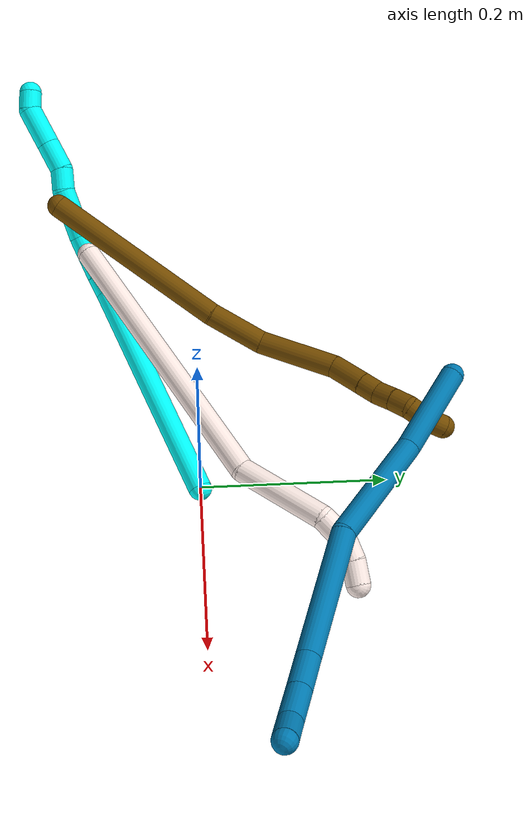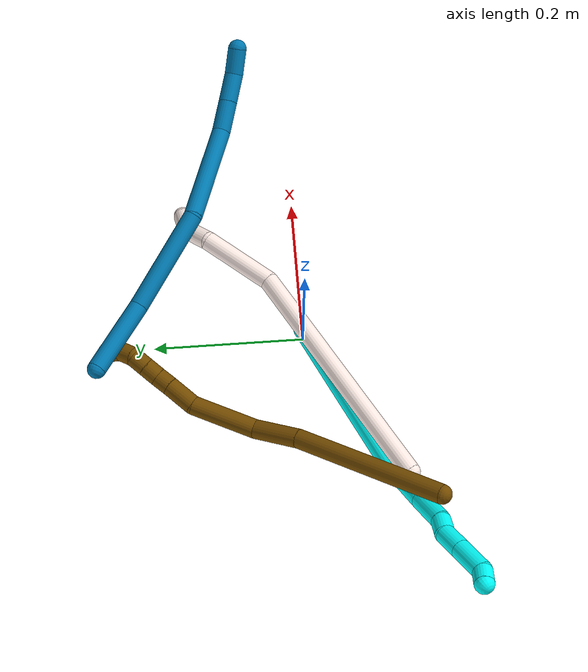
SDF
<sdf version="1.7">
 <world name="default">
  <model name="photoneo_s_sensor">
   <static>1</static>
   <pose>0 0 2 1.57079 1.57079 3.14159</pose>
   <link name="link">
    <inertial><mass>0.1</mass></inertial>
    <sensor name="sensor" type="depth">
     <update_rate>30</update_rate>
     <camera>
      <horizontal_fov>1.22</horizontal_fov>
      <image><width>1920</width><height>1200</height><format>B8G8R8</format></image>
      <clip><near>0.1</near><far>4</far></clip>
      <depth_camera><output>points</output></depth_camera>
     </camera>
     <plugin name="camera_plugin" filename="libgazebo_ros_depth_camera.so">
      <baseline>0.2</baseline>
      <alwaysOn>1</alwaysOn>
      <updateRate>0.0</updateRate>
      <cameraName>camera_ir</cameraName>
      <imageTopicName>/camera/color/image_raw</imageTopicName>
      <cameraInfoTopicName>/camera/color/camera_info</cameraInfoTopicName>
      <depthImageTopicName>/camera/depth/image_raw</depthImageTopicName>
      <depthImageCameraInfoTopicName>/camera/depth/camera_info</depthImageCameraInfoTopicName>
      <pointCloudTopicName>/camera/depth/points</pointCloudTopicName>
      <frameName>fr_optical</frameName>
      <pointCloudCutoff>0.1</pointCloudCutoff>
      <pointCloudCutoffMax>2.0</pointCloudCutoffMax>
      <distortionK1>0</distortionK1>
      <distortionK2>0</distortionK2>
      <distortionK3>0</distortionK3>
      <distortionT1>0</distortionT1>
      <distortionT2>0</distortionT2>
      <CxPrime>0</CxPrime>
      <Cx>0</Cx>
      <Cy>0</Cy>
      <focalLength>0</focalLength>
      <hackBaseline>0</hackBaseline>
     </plugin>
    </sensor>
   </link>
  </model>
  <model name="bin">
   <static>1</static>
   <link name="bottom">
    <collision name="collision-bottom">
     <pose>0 0 -0.01 0 -0 0</pose>
     <geometry><box><size>0.8 0.6 0.02</size></box></geometry>
     <surface>
      <friction><ode><mu>100</mu><mu2>100</mu2></ode></friction>
      <contact><collide_bitmask>65535</collide_bitmask></contact>
     </surface>
    </collision>
   </link>
   <link name="west_wall">
    <collision name="collision-west_wall">
     <pose>-0.41 0 0.1 0 -0 0</pose>
     <geometry><box><size>0.02 0.6 0.2</size></box></geometry>
     <surface>
      <friction><ode><mu>100</mu><mu2>100</mu2></ode></friction>
      <contact><collide_bitmask>65535</collide_bitmask></contact>
     </surface>
    </collision>
   </link>
   <link name="east_wall">
    <collision name="collision-east_wall">
     <pose>0.41 0 0.1 0 -0 0</pose>
     <geometry><box><size>0.02 0.6 0.2</size></box></geometry>
     <surface>
      <friction><ode><mu>100</mu><mu2>100</mu2></ode></friction>
      <contact><collide_bitmask>65535</collide_bitmask></contact>
     </surface>
    </collision>
   </link>
   <link name="south_wall">
    <collision name="collision-south_wall">
     <pose>0 -0.31 0.1 0 -0 0</pose>
     <geometry><box><size>0.8 0.02 0.2</size></box></geometry>
     <surface>
      <friction><ode><mu>100</mu><mu2>100</mu2></ode></friction>
      <contact><collide_bitmask>65535</collide_bitmask></contact>
     </surface>
    </collision>
   </link>
   <link name="north_wall">
    <collision name="collision-north_wall">
     <pose>0 0.31 0.1 0 -0 0</pose>
     <geometry><box><size>0.8 0.02 0.2</size></box></geometry>
     <surface>
      <friction><ode><mu>100</mu><mu2>100</mu2></ode></friction>
      <contact><collide_bitmask>65535</collide_bitmask></contact>
     </surface>
    </collision>
   </link>
  </model>
  <model name="3">
   <static>0</static>
   <link name="3">
    <collision name="collision-cylinder-e_1_1_4">
     <pose>-0.005556 -0.011084 0.125995 0.087748 -0.043903 -0.001928</pose>
     <geometry><cylinder><radius>0.0125</radius><length>0.253207</length></cylinder></geometry>
     <surface>
      <friction><ode><mu>1.16</mu><mu2>1.16</mu2><slip1>0</slip1><slip2>0</slip2></ode></friction>
      <contact><ode><kp>1e+06</kp><kd>1</kd><max_vel>0</max_vel><min_depth>0.001</min_depth></ode></contact>
     </surface>
    </collision>
    <visual name="visual-cylinder-e_1_1_4">
     <pose>-0.005556 -0.011084 0.125995 0.087748 -0.043903 -0.001928</pose>
     <geometry><cylinder><radius>0.0125</radius><length>0.253207</length></cylinder></geometry>
     <material><ambient>0.003922 1 0.996078 1</ambient></material>
    </visual>
    <collision name="collision-cylinder-e_2_4_5">
     <pose>-0.011806 -0.020021 0.262543 -0.200759 -0.064314 0.00648</pose>
     <geometry><cylinder><radius>0.0125</radius><length>0.021583</length></cylinder></geometry>
     <surface>
      <friction><ode><mu>1.16</mu><mu2>1.16</mu2><slip1>0</slip1><slip2>0</slip2></ode></friction>
      <contact><ode><kp>1e+06</kp><kd>1</kd><max_vel>0</max_vel><min_depth>0.001</min_depth></ode></contact>
     </surface>
    </collision>
    <visual name="visual-cylinder-e_2_4_5">
     <pose>-0.011806 -0.020021 0.262543 -0.200759 -0.064314 0.00648</pose>
     <geometry><cylinder><radius>0.0125</radius><length>0.021583</length></cylinder></geometry>
     <material><ambient>0.003922 1 0.996078 1</ambient></material>
    </visual>
    <collision name="collision-cylinder-e_3_5_6">
     <pose>-0.014954 -0.01352 0.29679 -0.18172 -0.101504 0.009256</pose>
     <geometry><cylinder><radius>0.0125</radius><length>0.048431</length></cylinder></geometry>
     <surface>
      <friction><ode><mu>1.16</mu><mu2>1.16</mu2><slip1>0</slip1><slip2>0</slip2></ode></friction>
      <contact><ode><kp>1e+06</kp><kd>1</kd><max_vel>0</max_vel><min_depth>0.001</min_depth></ode></contact>
     </surface>
    </collision>
    <visual name="visual-cylinder-e_3_5_6">
     <pose>-0.014954 -0.01352 0.29679 -0.18172 -0.101504 0.009256</pose>
     <geometry><cylinder><radius>0.0125</radius><length>0.048431</length></cylinder></geometry>
     <material><ambient>0.003922 1 0.996078 1</ambient></material>
    </visual>
    <collision name="collision-cylinder-e_4_6_7">
     <pose>-0.023008 -0.000357 0.346001 -0.332392 -0.204579 0.034433</pose>
     <geometry><cylinder><radius>0.0125</radius><length>0.05514</length></cylinder></geometry>
     <surface>
      <friction><ode><mu>1.16</mu><mu2>1.16</mu2><slip1>0</slip1><slip2>0</slip2></ode></friction>
      <contact><ode><kp>1e+06</kp><kd>1</kd><max_vel>0</max_vel><min_depth>0.001</min_depth></ode></contact>
     </surface>
    </collision>
    <visual name="visual-cylinder-e_4_6_7">
     <pose>-0.023008 -0.000357 0.346001 -0.332392 -0.204579 0.034433</pose>
     <geometry><cylinder><radius>0.0125</radius><length>0.05514</length></cylinder></geometry>
     <material><ambient>0.003922 1 0.996078 1</ambient></material>
    </visual>
    <collision name="collision-cylinder-e_5_7_8">
     <pose>-0.033783 0.009658 0.382567 -0.108796 -0.43562 0.024101</pose>
     <geometry><cylinder><radius>0.0125</radius><length>0.02452</length></cylinder></geometry>
     <surface>
      <friction><ode><mu>1.16</mu><mu2>1.16</mu2><slip1>0</slip1><slip2>0</slip2></ode></friction>
      <contact><ode><kp>1e+06</kp><kd>1</kd><max_vel>0</max_vel><min_depth>0.001</min_depth></ode></contact>
     </surface>
    </collision>
    <visual name="visual-cylinder-e_5_7_8">
     <pose>-0.033783 0.009658 0.382567 -0.108796 -0.43562 0.024101</pose>
     <geometry><cylinder><radius>0.0125</radius><length>0.02452</length></cylinder></geometry>
     <material><ambient>0.003922 1 0.996078 1</ambient></material>
    </visual>
    <collision name="collision-cylinder-e_6_8_9">
     <pose>-0.039788 0.01418 0.409571 -0.204854 -0.051022 0.005246</pose>
     <geometry><cylinder><radius>0.0125</radius><length>0.032632</length></cylinder></geometry>
     <surface>
      <friction><ode><mu>1.16</mu><mu2>1.16</mu2><slip1>0</slip1><slip2>0</slip2></ode></friction>
      <contact><ode><kp>1e+06</kp><kd>1</kd><max_vel>0</max_vel><min_depth>0.001</min_depth></ode></contact>
     </surface>
    </collision>
    <visual name="visual-cylinder-e_6_8_9">
     <pose>-0.039788 0.01418 0.409571 -0.204854 -0.051022 0.005246</pose>
     <geometry><cylinder><radius>0.0125</radius><length>0.032632</length></cylinder></geometry>
     <material><ambient>0.003922 1 0.996078 1</ambient></material>
    </visual>
    <collision name="collision-cylinder-e_7_9_10">
     <pose>-0.041625 0.02166 0.447101 -0.190708 -0.045691 0.004371</pose>
     <geometry><cylinder><radius>0.0125</radius><length>0.043994</length></cylinder></geometry>
     <surface>
      <friction><ode><mu>1.16</mu><mu2>1.16</mu2><slip1>0</slip1><slip2>0</slip2></ode></friction>
      <contact><ode><kp>1e+06</kp><kd>1</kd><max_vel>0</max_vel><min_depth>0.001</min_depth></ode></contact>
     </surface>
    </collision>
    <visual name="visual-cylinder-e_7_9_10">
     <pose>-0.041625 0.02166 0.447101 -0.190708 -0.045691 0.004371</pose>
     <geometry><cylinder><radius>0.0125</radius><length>0.043994</length></cylinder></geometry>
     <material><ambient>0.003922 1 0.996078 1</ambient></material>
    </visual>
    <collision name="collision-cylinder-e_8_10_2">
     <pose>-0.047684 0.026006 0.477588 -0.020355 -0.515833 0.00537</pose>
     <geometry><cylinder><radius>0.0125</radius><length>0.020494</length></cylinder></geometry>
     <surface>
      <friction><ode><mu>1.16</mu><mu2>1.16</mu2><slip1>0</slip1><slip2>0</slip2></ode></friction>
      <contact><ode><kp>1e+06</kp><kd>1</kd><max_vel>0</max_vel><min_depth>0.001</min_depth></ode></contact>
     </surface>
    </collision>
    <visual name="visual-cylinder-e_8_10_2">
     <pose>-0.047684 0.026006 0.477588 -0.020355 -0.515833 0.00537</pose>
     <geometry><cylinder><radius>0.0125</radius><length>0.020494</length></cylinder></geometry>
     <material><ambient>0.003922 1 0.996078 1</ambient></material>
    </visual>
    <collision name="collision-sphere-2">
     <pose>-0.052738 0.026188 0.4865 0 -0 0</pose>
     <geometry><sphere><radius>0.0125</radius></sphere></geometry>
     <surface>
      <friction><ode><mu>1.16</mu><mu2>1.16</mu2><slip1>0</slip1><slip2>0</slip2></ode></friction>
      <contact><ode><kp>1e+06</kp><kd>1</kd><max_vel>0</max_vel><min_depth>0.001</min_depth></ode></contact>
     </surface>
    </collision>
    <visual name="visual-sphere-2">
     <pose>-0.052738 0.026188 0.4865 0 -0 0</pose>
     <geometry><sphere><radius>0.0125</radius></sphere></geometry>
     <material><ambient>0.003922 1 0.996078 1</ambient></material>
    </visual>
    <collision name="collision-sphere-10">
     <pose>-0.04263 0.025825 0.468676 0 -0 0</pose>
     <geometry><sphere><radius>0.0125</radius></sphere></geometry>
     <surface>
      <friction><ode><mu>1.16</mu><mu2>1.16</mu2><slip1>0</slip1><slip2>0</slip2></ode></friction>
      <contact><ode><kp>1e+06</kp><kd>1</kd><max_vel>0</max_vel><min_depth>0.001</min_depth></ode></contact>
     </surface>
    </collision>
    <visual name="visual-sphere-10">
     <pose>-0.04263 0.025825 0.468676 0 -0 0</pose>
     <geometry><sphere><radius>0.0125</radius></sphere></geometry>
     <material><ambient>0.003922 1 0.996078 1</ambient></material>
    </visual>
    <collision name="collision-sphere-9">
     <pose>-0.04062 0.017494 0.425525 0 -0 0</pose>
     <geometry><sphere><radius>0.0125</radius></sphere></geometry>
     <surface>
      <friction><ode><mu>1.16</mu><mu2>1.16</mu2><slip1>0</slip1><slip2>0</slip2></ode></friction>
      <contact><ode><kp>1e+06</kp><kd>1</kd><max_vel>0</max_vel><min_depth>0.001</min_depth></ode></contact>
     </surface>
    </collision>
    <visual name="visual-sphere-9">
     <pose>-0.04062 0.017494 0.425525 0 -0 0</pose>
     <geometry><sphere><radius>0.0125</radius></sphere></geometry>
     <material><ambient>0.003922 1 0.996078 1</ambient></material>
    </visual>
    <collision name="collision-sphere-4">
     <pose>-0.011113 -0.022169 0.251989 0 -0 0</pose>
     <geometry><sphere><radius>0.0125</radius></sphere></geometry>
     <surface>
      <friction><ode><mu>1.16</mu><mu2>1.16</mu2><slip1>0</slip1><slip2>0</slip2></ode></friction>
      <contact><ode><kp>1e+06</kp><kd>1</kd><max_vel>0</max_vel><min_depth>0.001</min_depth></ode></contact>
     </surface>
    </collision>
    <visual name="visual-sphere-4">
     <pose>-0.011113 -0.022169 0.251989 0 -0 0</pose>
     <geometry><sphere><radius>0.0125</radius></sphere></geometry>
     <material><ambient>0.003922 1 0.996078 1</ambient></material>
    </visual>
    <collision name="collision-sphere-1">
     <geometry><sphere><radius>0.0125</radius></sphere></geometry>
     <surface>
      <friction><ode><mu>1.16</mu><mu2>1.16</mu2><slip1>0</slip1><slip2>0</slip2></ode></friction>
      <contact><ode><kp>1e+06</kp><kd>1</kd><max_vel>0</max_vel><min_depth>0.001</min_depth></ode></contact>
     </surface>
    </collision>
    <visual name="visual-sphere-1">
     <geometry><sphere><radius>0.0125</radius></sphere></geometry>
     <material><ambient>0.003922 1 0.996078 1</ambient></material>
    </visual>
    <collision name="collision-sphere-8">
     <pose>-0.038956 0.010865 0.393617 0 -0 0</pose>
     <geometry><sphere><radius>0.0125</radius></sphere></geometry>
     <surface>
      <friction><ode><mu>1.16</mu><mu2>1.16</mu2><slip1>0</slip1><slip2>0</slip2></ode></friction>
      <contact><ode><kp>1e+06</kp><kd>1</kd><max_vel>0</max_vel><min_depth>0.001</min_depth></ode></contact>
     </surface>
    </collision>
    <visual name="visual-sphere-8">
     <pose>-0.038956 0.010865 0.393617 0 -0 0</pose>
     <geometry><sphere><radius>0.0125</radius></sphere></geometry>
     <material><ambient>0.003922 1 0.996078 1</ambient></material>
    </visual>
    <collision name="collision-sphere-5">
     <pose>-0.0125 -0.017873 0.273096 0 -0 0</pose>
     <geometry><sphere><radius>0.0125</radius></sphere></geometry>
     <surface>
      <friction><ode><mu>1.16</mu><mu2>1.16</mu2><slip1>0</slip1><slip2>0</slip2></ode></friction>
      <contact><ode><kp>1e+06</kp><kd>1</kd><max_vel>0</max_vel><min_depth>0.001</min_depth></ode></contact>
     </surface>
    </collision>
    <visual name="visual-sphere-5">
     <pose>-0.0125 -0.017873 0.273096 0 -0 0</pose>
     <geometry><sphere><radius>0.0125</radius></sphere></geometry>
     <material><ambient>0.003922 1 0.996078 1</ambient></material>
    </visual>
    <collision name="collision-sphere-6">
     <pose>-0.017408 -0.009166 0.320484 0 -0 0</pose>
     <geometry><sphere><radius>0.0125</radius></sphere></geometry>
     <surface>
      <friction><ode><mu>1.16</mu><mu2>1.16</mu2><slip1>0</slip1><slip2>0</slip2></ode></friction>
      <contact><ode><kp>1e+06</kp><kd>1</kd><max_vel>0</max_vel><min_depth>0.001</min_depth></ode></contact>
     </surface>
    </collision>
    <visual name="visual-sphere-6">
     <pose>-0.017408 -0.009166 0.320484 0 -0 0</pose>
     <geometry><sphere><radius>0.0125</radius></sphere></geometry>
     <material><ambient>0.003922 1 0.996078 1</ambient></material>
    </visual>
    <collision name="collision-sphere-7">
     <pose>-0.028609 0.008451 0.371518 0 -0 0</pose>
     <geometry><sphere><radius>0.0125</radius></sphere></geometry>
     <surface>
      <friction><ode><mu>1.16</mu><mu2>1.16</mu2><slip1>0</slip1><slip2>0</slip2></ode></friction>
      <contact><ode><kp>1e+06</kp><kd>1</kd><max_vel>0</max_vel><min_depth>0.001</min_depth></ode></contact>
     </surface>
    </collision>
    <visual name="visual-sphere-7">
     <pose>-0.028609 0.008451 0.371518 0 -0 0</pose>
     <geometry><sphere><radius>0.0125</radius></sphere></geometry>
     <material><ambient>0.003922 1 0.996078 1</ambient></material>
    </visual>
    <inertial>
     <pose>-0.01718 -0.003456 0.246449 0 -0 0</pose>
     <mass>0.5</mass>
     <inertia><ixx>0.0014</ixx><ixy>0</ixy><ixz>0</ixz><iyy>0.001402</iyy><iyz>0</iyz><izz>0.000214</izz></inertia>
    </inertial>
   </link>
   <pose>0.00978 -0.000494 0.011499 1.20417 0.427845 -1.25161</pose>
  </model>
  <model name="9">
   <static>0</static>
   <link name="9">
    <collision name="collision-cylinder-e_1_1_4">
     <pose>0.012689 -0.004847 0.050059 0.096519 0.247142 0.011997</pose>
     <geometry><cylinder><radius>0.0125</radius><length>0.103737</length></cylinder></geometry>
     <surface>
      <friction><ode><mu>1.16</mu><mu2>1.16</mu2><slip1>0</slip1><slip2>0</slip2></ode></friction>
      <contact><ode><kp>1e+06</kp><kd>1</kd><max_vel>0</max_vel><min_depth>0.001</min_depth></ode></contact>
     </surface>
    </collision>
    <visual name="visual-cylinder-e_1_1_4">
     <pose>0.012689 -0.004847 0.050059 0.096519 0.247142 0.011997</pose>
     <geometry><cylinder><radius>0.0125</radius><length>0.103737</length></cylinder></geometry>
     <material><ambient>0 0.490196 0.709804 1</ambient></material>
    </visual>
    <collision name="collision-cylinder-e_2_4_5">
     <pose>0.026809 -0.020167 0.169908 0.148957 0.020277 0.001513</pose>
     <geometry><cylinder><radius>0.0125</radius><length>0.141174</length></cylinder></geometry>
     <surface>
      <friction><ode><mu>1.16</mu><mu2>1.16</mu2><slip1>0</slip1><slip2>0</slip2></ode></friction>
      <contact><ode><kp>1e+06</kp><kd>1</kd><max_vel>0</max_vel><min_depth>0.001</min_depth></ode></contact>
     </surface>
    </collision>
    <visual name="visual-cylinder-e_2_4_5">
     <pose>0.026809 -0.020167 0.169908 0.148957 0.020277 0.001513</pose>
     <geometry><cylinder><radius>0.0125</radius><length>0.141174</length></cylinder></geometry>
     <material><ambient>0 0.490196 0.709804 1</ambient></material>
    </visual>
    <collision name="collision-cylinder-e_3_5_6">
     <pose>0.042269 -0.02058 0.306117 -0.150323 0.205883 -0.015558</pose>
     <geometry><cylinder><radius>0.0125</radius><length>0.137249</length></cylinder></geometry>
     <surface>
      <friction><ode><mu>1.16</mu><mu2>1.16</mu2><slip1>0</slip1><slip2>0</slip2></ode></friction>
      <contact><ode><kp>1e+06</kp><kd>1</kd><max_vel>0</max_vel><min_depth>0.001</min_depth></ode></contact>
     </surface>
    </collision>
    <visual name="visual-cylinder-e_3_5_6">
     <pose>0.042269 -0.02058 0.306117 -0.150323 0.205883 -0.015558</pose>
     <geometry><cylinder><radius>0.0125</radius><length>0.137249</length></cylinder></geometry>
     <material><ambient>0 0.490196 0.709804 1</ambient></material>
    </visual>
    <collision name="collision-cylinder-e_4_6_7">
     <pose>0.053428 -0.007819 0.393654 -0.127208 -0.133999 0.008547</pose>
     <geometry><cylinder><radius>0.0125</radius><length>0.042968</length></cylinder></geometry>
     <surface>
      <friction><ode><mu>1.16</mu><mu2>1.16</mu2><slip1>0</slip1><slip2>0</slip2></ode></friction>
      <contact><ode><kp>1e+06</kp><kd>1</kd><max_vel>0</max_vel><min_depth>0.001</min_depth></ode></contact>
     </surface>
    </collision>
    <visual name="visual-cylinder-e_4_6_7">
     <pose>0.053428 -0.007819 0.393654 -0.127208 -0.133999 0.008547</pose>
     <geometry><cylinder><radius>0.0125</radius><length>0.042968</length></cylinder></geometry>
     <material><ambient>0 0.490196 0.709804 1</ambient></material>
    </visual>
    <collision name="collision-cylinder-e_5_7_8">
     <pose>0.047277 -0.002766 0.434314 -0.119761 -0.165154 0.009924</pose>
     <geometry><cylinder><radius>0.0125</radius><length>0.039907</length></cylinder></geometry>
     <surface>
      <friction><ode><mu>1.16</mu><mu2>1.16</mu2><slip1>0</slip1><slip2>0</slip2></ode></friction>
      <contact><ode><kp>1e+06</kp><kd>1</kd><max_vel>0</max_vel><min_depth>0.001</min_depth></ode></contact>
     </surface>
    </collision>
    <visual name="visual-cylinder-e_5_7_8">
     <pose>0.047277 -0.002766 0.434314 -0.119761 -0.165154 0.009924</pose>
     <geometry><cylinder><radius>0.0125</radius><length>0.039907</length></cylinder></geometry>
     <material><ambient>0 0.490196 0.709804 1</ambient></material>
    </visual>
    <collision name="collision-cylinder-e_6_8_2">
     <pose>0.035696 0.001089 0.469167 -0.097891 -0.494756 0.024741</pose>
     <geometry><cylinder><radius>0.0125</radius><length>0.034965</length></cylinder></geometry>
     <surface>
      <friction><ode><mu>1.16</mu><mu2>1.16</mu2><slip1>0</slip1><slip2>0</slip2></ode></friction>
      <contact><ode><kp>1e+06</kp><kd>1</kd><max_vel>0</max_vel><min_depth>0.001</min_depth></ode></contact>
     </surface>
    </collision>
    <visual name="visual-cylinder-e_6_8_2">
     <pose>0.035696 0.001089 0.469167 -0.097891 -0.494756 0.024741</pose>
     <geometry><cylinder><radius>0.0125</radius><length>0.034965</length></cylinder></geometry>
     <material><ambient>0 0.490196 0.709804 1</ambient></material>
    </visual>
    <collision name="collision-sphere-2">
     <pose>0.027395 0.002593 0.48448 0 -0 0</pose>
     <geometry><sphere><radius>0.0125</radius></sphere></geometry>
     <surface>
      <friction><ode><mu>1.16</mu><mu2>1.16</mu2><slip1>0</slip1><slip2>0</slip2></ode></friction>
      <contact><ode><kp>1e+06</kp><kd>1</kd><max_vel>0</max_vel><min_depth>0.001</min_depth></ode></contact>
     </surface>
    </collision>
    <visual name="visual-sphere-2">
     <pose>0.027395 0.002593 0.48448 0 -0 0</pose>
     <geometry><sphere><radius>0.0125</radius></sphere></geometry>
     <material><ambient>0 0.490196 0.709804 1</ambient></material>
    </visual>
    <collision name="collision-sphere-4">
     <pose>0.025378 -0.009693 0.100117 0 -0 0</pose>
     <geometry><sphere><radius>0.0125</radius></sphere></geometry>
     <surface>
      <friction><ode><mu>1.16</mu><mu2>1.16</mu2><slip1>0</slip1><slip2>0</slip2></ode></friction>
      <contact><ode><kp>1e+06</kp><kd>1</kd><max_vel>0</max_vel><min_depth>0.001</min_depth></ode></contact>
     </surface>
    </collision>
    <visual name="visual-sphere-4">
     <pose>0.025378 -0.009693 0.100117 0 -0 0</pose>
     <geometry><sphere><radius>0.0125</radius></sphere></geometry>
     <material><ambient>0 0.490196 0.709804 1</ambient></material>
    </visual>
    <collision name="collision-sphere-1">
     <geometry><sphere><radius>0.0125</radius></sphere></geometry>
     <surface>
      <friction><ode><mu>1.16</mu><mu2>1.16</mu2><slip1>0</slip1><slip2>0</slip2></ode></friction>
      <contact><ode><kp>1e+06</kp><kd>1</kd><max_vel>0</max_vel><min_depth>0.001</min_depth></ode></contact>
     </surface>
    </collision>
    <visual name="visual-sphere-1">
     <geometry><sphere><radius>0.0125</radius></sphere></geometry>
     <material><ambient>0 0.490196 0.709804 1</ambient></material>
    </visual>
    <collision name="collision-sphere-8">
     <pose>0.043997 -0.000415 0.453855 0 -0 0</pose>
     <geometry><sphere><radius>0.0125</radius></sphere></geometry>
     <surface>
      <friction><ode><mu>1.16</mu><mu2>1.16</mu2><slip1>0</slip1><slip2>0</slip2></ode></friction>
      <contact><ode><kp>1e+06</kp><kd>1</kd><max_vel>0</max_vel><min_depth>0.001</min_depth></ode></contact>
     </surface>
    </collision>
    <visual name="visual-sphere-8">
     <pose>0.043997 -0.000415 0.453855 0 -0 0</pose>
     <geometry><sphere><radius>0.0125</radius></sphere></geometry>
     <material><ambient>0 0.490196 0.709804 1</ambient></material>
    </visual>
    <collision name="collision-sphere-5">
     <pose>0.02824 -0.03064 0.239699 0 -0 0</pose>
     <geometry><sphere><radius>0.0125</radius></sphere></geometry>
     <surface>
      <friction><ode><mu>1.16</mu><mu2>1.16</mu2><slip1>0</slip1><slip2>0</slip2></ode></friction>
      <contact><ode><kp>1e+06</kp><kd>1</kd><max_vel>0</max_vel><min_depth>0.001</min_depth></ode></contact>
     </surface>
    </collision>
    <visual name="visual-sphere-5">
     <pose>0.02824 -0.03064 0.239699 0 -0 0</pose>
     <geometry><sphere><radius>0.0125</radius></sphere></geometry>
     <material><ambient>0 0.490196 0.709804 1</ambient></material>
    </visual>
    <collision name="collision-sphere-6">
     <pose>0.056298 -0.01052 0.372535 0 -0 0</pose>
     <geometry><sphere><radius>0.0125</radius></sphere></geometry>
     <surface>
      <friction><ode><mu>1.16</mu><mu2>1.16</mu2><slip1>0</slip1><slip2>0</slip2></ode></friction>
      <contact><ode><kp>1e+06</kp><kd>1</kd><max_vel>0</max_vel><min_depth>0.001</min_depth></ode></contact>
     </surface>
    </collision>
    <visual name="visual-sphere-6">
     <pose>0.056298 -0.01052 0.372535 0 -0 0</pose>
     <geometry><sphere><radius>0.0125</radius></sphere></geometry>
     <material><ambient>0 0.490196 0.709804 1</ambient></material>
    </visual>
    <collision name="collision-sphere-7">
     <pose>0.050558 -0.005118 0.414774 0 -0 0</pose>
     <geometry><sphere><radius>0.0125</radius></sphere></geometry>
     <surface>
      <friction><ode><mu>1.16</mu><mu2>1.16</mu2><slip1>0</slip1><slip2>0</slip2></ode></friction>
      <contact><ode><kp>1e+06</kp><kd>1</kd><max_vel>0</max_vel><min_depth>0.001</min_depth></ode></contact>
     </surface>
    </collision>
    <visual name="visual-sphere-7">
     <pose>0.050558 -0.005118 0.414774 0 -0 0</pose>
     <geometry><sphere><radius>0.0125</radius></sphere></geometry>
     <material><ambient>0 0.490196 0.709804 1</ambient></material>
    </visual>
    <inertial>
     <pose>0.032666 -0.013165 0.24369 0 -0 0</pose>
     <mass>0.5</mass>
     <inertia>
      <ixx>0.00057</ixx>
      <ixy>0</ixy>
      <ixz>0</ixz>
      <iyy>0.000571</iyy>
      <iyz>0</iyz>
      <izz>-2.1e-05</izz>
     </inertia>
    </inertial>
   </link>
   <pose>-0.061288 0.270006 0.098332 -0.848237 1.34997 -1.30289</pose>
  </model>
  <model name="11">
   <static>0</static>
   <link name="11">
    <collision name="collision-cylinder-e_1_1_4">
     <pose>0.135553 0.073714 -0.04836 -2.15141 0.994148 -1.57554</pose>
     <geometry><cylinder><radius>0.0125</radius><length>0.323401</length></cylinder></geometry>
     <surface>
      <friction><ode><mu>1.16</mu><mu2>1.16</mu2><slip1>0</slip1><slip2>0</slip2></ode></friction>
      <contact><ode><kp>1e+06</kp><kd>1</kd><max_vel>0</max_vel><min_depth>0.001</min_depth></ode></contact>
     </surface>
    </collision>
    <visual name="visual-cylinder-e_1_1_4">
     <pose>0.135553 0.073714 -0.04836 -2.15141 0.994148 -1.57554</pose>
     <geometry><cylinder><radius>0.0125</radius><length>0.323401</length></cylinder></geometry>
     <material><ambient>1 0.933333 0.909804 1</ambient></material>
    </visual>
    <collision name="collision-cylinder-e_2_4_5">
     <pose>0.319299 0.152938 -0.105872 -2.59972 1.35268 -2.47525</pose>
     <geometry><cylinder><radius>0.0125</radius><length>0.098726</length></cylinder></geometry>
     <surface>
      <friction><ode><mu>1.16</mu><mu2>1.16</mu2><slip1>0</slip1><slip2>0</slip2></ode></friction>
      <contact><ode><kp>1e+06</kp><kd>1</kd><max_vel>0</max_vel><min_depth>0.001</min_depth></ode></contact>
     </surface>
    </collision>
    <visual name="visual-cylinder-e_2_4_5">
     <pose>0.319299 0.152938 -0.105872 -2.59972 1.35268 -2.47525</pose>
     <geometry><cylinder><radius>0.0125</radius><length>0.098726</length></cylinder></geometry>
     <material><ambient>1 0.933333 0.909804 1</ambient></material>
    </visual>
    <collision name="collision-cylinder-e_3_5_6">
     <pose>0.381685 0.164556 -0.113073 -1.26175 1.14641 -0.881196</pose>
     <geometry><cylinder><radius>0.0125</radius><length>0.031148</length></cylinder></geometry>
     <surface>
      <friction><ode><mu>1.16</mu><mu2>1.16</mu2><slip1>0</slip1><slip2>0</slip2></ode></friction>
      <contact><ode><kp>1e+06</kp><kd>1</kd><max_vel>0</max_vel><min_depth>0.001</min_depth></ode></contact>
     </surface>
    </collision>
    <visual name="visual-cylinder-e_3_5_6">
     <pose>0.381685 0.164556 -0.113073 -1.26175 1.14641 -0.881196</pose>
     <geometry><cylinder><radius>0.0125</radius><length>0.031148</length></cylinder></geometry>
     <material><ambient>1 0.933333 0.909804 1</ambient></material>
    </visual>
    <collision name="collision-cylinder-e_4_6_7">
     <pose>0.40347 0.178223 -0.110117 -1.43848 0.783289 -0.694041</pose>
     <geometry><cylinder><radius>0.0125</radius><length>0.021521</length></cylinder></geometry>
     <surface>
      <friction><ode><mu>1.16</mu><mu2>1.16</mu2><slip1>0</slip1><slip2>0</slip2></ode></friction>
      <contact><ode><kp>1e+06</kp><kd>1</kd><max_vel>0</max_vel><min_depth>0.001</min_depth></ode></contact>
     </surface>
    </collision>
    <visual name="visual-cylinder-e_4_6_7">
     <pose>0.40347 0.178223 -0.110117 -1.43848 0.783289 -0.694041</pose>
     <geometry><cylinder><radius>0.0125</radius><length>0.021521</length></cylinder></geometry>
     <material><ambient>1 0.933333 0.909804 1</ambient></material>
    </visual>
    <collision name="collision-cylinder-e_5_7_2">
     <pose>0.418121 0.19622 -0.109032 -1.56327 0.594562 -0.590357</pose>
     <geometry><cylinder><radius>0.0125</radius><length>0.025204</length></cylinder></geometry>
     <surface>
      <friction><ode><mu>1.16</mu><mu2>1.16</mu2><slip1>0</slip1><slip2>0</slip2></ode></friction>
      <contact><ode><kp>1e+06</kp><kd>1</kd><max_vel>0</max_vel><min_depth>0.001</min_depth></ode></contact>
     </surface>
    </collision>
    <visual name="visual-cylinder-e_5_7_2">
     <pose>0.418121 0.19622 -0.109032 -1.56327 0.594562 -0.590357</pose>
     <geometry><cylinder><radius>0.0125</radius><length>0.025204</length></cylinder></geometry>
     <material><ambient>1 0.933333 0.909804 1</ambient></material>
    </visual>
    <collision name="collision-sphere-2">
     <pose>0.425181 0.206659 -0.108954 0 -0 0</pose>
     <geometry><sphere><radius>0.0125</radius></sphere></geometry>
     <surface>
      <friction><ode><mu>1.16</mu><mu2>1.16</mu2><slip1>0</slip1><slip2>0</slip2></ode></friction>
      <contact><ode><kp>1e+06</kp><kd>1</kd><max_vel>0</max_vel><min_depth>0.001</min_depth></ode></contact>
     </surface>
    </collision>
    <visual name="visual-sphere-2">
     <pose>0.425181 0.206659 -0.108954 0 -0 0</pose>
     <geometry><sphere><radius>0.0125</radius></sphere></geometry>
     <material><ambient>1 0.933333 0.909804 1</ambient></material>
    </visual>
    <collision name="collision-sphere-7">
     <pose>0.411062 0.185781 -0.109111 0 -0 0</pose>
     <geometry><sphere><radius>0.0125</radius></sphere></geometry>
     <surface>
      <friction><ode><mu>1.16</mu><mu2>1.16</mu2><slip1>0</slip1><slip2>0</slip2></ode></friction>
      <contact><ode><kp>1e+06</kp><kd>1</kd><max_vel>0</max_vel><min_depth>0.001</min_depth></ode></contact>
     </surface>
    </collision>
    <visual name="visual-sphere-7">
     <pose>0.411062 0.185781 -0.109111 0 -0 0</pose>
     <geometry><sphere><radius>0.0125</radius></sphere></geometry>
     <material><ambient>1 0.933333 0.909804 1</ambient></material>
    </visual>
    <collision name="collision-sphere-6">
     <pose>0.395877 0.170664 -0.111123 0 -0 0</pose>
     <geometry><sphere><radius>0.0125</radius></sphere></geometry>
     <surface>
      <friction><ode><mu>1.16</mu><mu2>1.16</mu2><slip1>0</slip1><slip2>0</slip2></ode></friction>
      <contact><ode><kp>1e+06</kp><kd>1</kd><max_vel>0</max_vel><min_depth>0.001</min_depth></ode></contact>
     </surface>
    </collision>
    <visual name="visual-sphere-6">
     <pose>0.395877 0.170664 -0.111123 0 -0 0</pose>
     <geometry><sphere><radius>0.0125</radius></sphere></geometry>
     <material><ambient>1 0.933333 0.909804 1</ambient></material>
    </visual>
    <collision name="collision-sphere-5">
     <pose>0.367492 0.158447 -0.115024 0 -0 0</pose>
     <geometry><sphere><radius>0.0125</radius></sphere></geometry>
     <surface>
      <friction><ode><mu>1.16</mu><mu2>1.16</mu2><slip1>0</slip1><slip2>0</slip2></ode></friction>
      <contact><ode><kp>1e+06</kp><kd>1</kd><max_vel>0</max_vel><min_depth>0.001</min_depth></ode></contact>
     </surface>
    </collision>
    <visual name="visual-sphere-5">
     <pose>0.367492 0.158447 -0.115024 0 -0 0</pose>
     <geometry><sphere><radius>0.0125</radius></sphere></geometry>
     <material><ambient>1 0.933333 0.909804 1</ambient></material>
    </visual>
    <collision name="collision-sphere-1">
     <geometry><sphere><radius>0.0125</radius></sphere></geometry>
     <surface>
      <friction><ode><mu>1.16</mu><mu2>1.16</mu2><slip1>0</slip1><slip2>0</slip2></ode></friction>
      <contact><ode><kp>1e+06</kp><kd>1</kd><max_vel>0</max_vel><min_depth>0.001</min_depth></ode></contact>
     </surface>
    </collision>
    <visual name="visual-sphere-1">
     <geometry><sphere><radius>0.0125</radius></sphere></geometry>
     <material><ambient>1 0.933333 0.909804 1</ambient></material>
    </visual>
    <collision name="collision-sphere-4">
     <pose>0.271105 0.147429 -0.09672 0 -0 0</pose>
     <geometry><sphere><radius>0.0125</radius></sphere></geometry>
     <surface>
      <friction><ode><mu>1.16</mu><mu2>1.16</mu2><slip1>0</slip1><slip2>0</slip2></ode></friction>
      <contact><ode><kp>1e+06</kp><kd>1</kd><max_vel>0</max_vel><min_depth>0.001</min_depth></ode></contact>
     </surface>
    </collision>
    <visual name="visual-sphere-4">
     <pose>0.271105 0.147429 -0.09672 0 -0 0</pose>
     <geometry><sphere><radius>0.0125</radius></sphere></geometry>
     <material><ambient>1 0.933333 0.909804 1</ambient></material>
    </visual>
    <inertial>
     <pose>0.212942 0.10569 -0.069464 0 -0 0</pose>
     <mass>0.5</mass>
     <inertia>
      <ixx>-0.001543</ixx>
      <ixy>0</ixy>
      <ixz>0</ixz>
      <iyy>0.000538</iyy>
      <iyz>0</iyz>
      <izz>-0.003775</izz>
     </inertia>
    </inertial>
   </link>
   <pose>-0.234597 -0.112472 0.122815 -2.49862 0.067403 1.07872</pose>
  </model>
  <model name="12">
   <static>0</static>
   <link name="12">
    <collision name="collision-cylinder-e_1_1_4">
     <pose>0.01402 0.033332 -0.097091 -2.81089 0.135735 -0.773605</pose>
     <geometry><cylinder><radius>0.0125</radius><length>0.207212</length></cylinder></geometry>
     <surface>
      <friction><ode><mu>1.16</mu><mu2>1.16</mu2><slip1>0</slip1><slip2>0</slip2></ode></friction>
      <contact><ode><kp>1e+06</kp><kd>1</kd><max_vel>0</max_vel><min_depth>0.001</min_depth></ode></contact>
     </surface>
    </collision>
    <visual name="visual-cylinder-e_1_1_4">
     <pose>0.01402 0.033332 -0.097091 -2.81089 0.135735 -0.773605</pose>
     <geometry><cylinder><radius>0.0125</radius><length>0.207212</length></cylinder></geometry>
     <material><ambient>0.466667 0.301961 0 1</ambient></material>
    </visual>
    <collision name="collision-cylinder-e_2_4_5">
     <pose>0.028567 0.07894 -0.223041 -2.73942 0.016829 -0.082514</pose>
     <geometry><cylinder><radius>0.0125</radius><length>0.062731</length></cylinder></geometry>
     <surface>
      <friction><ode><mu>1.16</mu><mu2>1.16</mu2><slip1>0</slip1><slip2>0</slip2></ode></friction>
      <contact><ode><kp>1e+06</kp><kd>1</kd><max_vel>0</max_vel><min_depth>0.001</min_depth></ode></contact>
     </surface>
    </collision>
    <visual name="visual-cylinder-e_2_4_5">
     <pose>0.028567 0.07894 -0.223041 -2.73942 0.016829 -0.082514</pose>
     <geometry><cylinder><radius>0.0125</radius><length>0.062731</length></cylinder></geometry>
     <material><ambient>0.466667 0.301961 0 1</ambient></material>
    </visual>
    <collision name="collision-cylinder-e_3_5_6">
     <pose>0.039606 0.117404 -0.284682 -2.46755 0.245452 -0.676956</pose>
     <geometry><cylinder><radius>0.0125</radius><length>0.086511</length></cylinder></geometry>
     <surface>
      <friction><ode><mu>1.16</mu><mu2>1.16</mu2><slip1>0</slip1><slip2>0</slip2></ode></friction>
      <contact><ode><kp>1e+06</kp><kd>1</kd><max_vel>0</max_vel><min_depth>0.001</min_depth></ode></contact>
     </surface>
    </collision>
    <visual name="visual-cylinder-e_3_5_6">
     <pose>0.039606 0.117404 -0.284682 -2.46755 0.245452 -0.676956</pose>
     <geometry><cylinder><radius>0.0125</radius><length>0.086511</length></cylinder></geometry>
     <material><ambient>0.466667 0.301961 0 1</ambient></material>
    </visual>
    <collision name="collision-cylinder-e_4_6_7">
     <pose>0.060049 0.152064 -0.331992 -2.61366 0.53348 -1.58175</pose>
     <geometry><cylinder><radius>0.0125</radius><length>0.039062</length></cylinder></geometry>
     <surface>
      <friction><ode><mu>1.16</mu><mu2>1.16</mu2><slip1>0</slip1><slip2>0</slip2></ode></friction>
      <contact><ode><kp>1e+06</kp><kd>1</kd><max_vel>0</max_vel><min_depth>0.001</min_depth></ode></contact>
     </surface>
    </collision>
    <visual name="visual-cylinder-e_4_6_7">
     <pose>0.060049 0.152064 -0.331992 -2.61366 0.53348 -1.58175</pose>
     <geometry><cylinder><radius>0.0125</radius><length>0.039062</length></cylinder></geometry>
     <material><ambient>0.466667 0.301961 0 1</ambient></material>
    </visual>
    <collision name="collision-cylinder-e_5_7_8">
     <pose>0.074867 0.164935 -0.354426 -2.63377 0.49513 -1.5444</pose>
     <geometry><cylinder><radius>0.0125</radius><length>0.020565</length></cylinder></geometry>
     <surface>
      <friction><ode><mu>1.16</mu><mu2>1.16</mu2><slip1>0</slip1><slip2>0</slip2></ode></friction>
      <contact><ode><kp>1e+06</kp><kd>1</kd><max_vel>0</max_vel><min_depth>0.001</min_depth></ode></contact>
     </surface>
    </collision>
    <visual name="visual-cylinder-e_5_7_8">
     <pose>0.074867 0.164935 -0.354426 -2.63377 0.49513 -1.5444</pose>
     <geometry><cylinder><radius>0.0125</radius><length>0.020565</length></cylinder></geometry>
     <material><ambient>0.466667 0.301961 0 1</ambient></material>
    </visual>
    <collision name="collision-cylinder-e_6_8_9">
     <pose>0.08556 0.175013 -0.368803 -2.42144 0.593419 -1.3641</pose>
     <geometry><cylinder><radius>0.0125</radius><length>0.02077</length></cylinder></geometry>
     <surface>
      <friction><ode><mu>1.16</mu><mu2>1.16</mu2><slip1>0</slip1><slip2>0</slip2></ode></friction>
      <contact><ode><kp>1e+06</kp><kd>1</kd><max_vel>0</max_vel><min_depth>0.001</min_depth></ode></contact>
     </surface>
    </collision>
    <visual name="visual-cylinder-e_6_8_9">
     <pose>0.08556 0.175013 -0.368803 -2.42144 0.593419 -1.3641</pose>
     <geometry><cylinder><radius>0.0125</radius><length>0.02077</length></cylinder></geometry>
     <material><ambient>0.466667 0.301961 0 1</ambient></material>
    </visual>
    <collision name="collision-cylinder-e_7_9_10">
     <pose>0.096987 0.185942 -0.382241 -2.49563 0.572307 -1.44228</pose>
     <geometry><cylinder><radius>0.0125</radius><length>0.020754</length></cylinder></geometry>
     <surface>
      <friction><ode><mu>1.16</mu><mu2>1.16</mu2><slip1>0</slip1><slip2>0</slip2></ode></friction>
      <contact><ode><kp>1e+06</kp><kd>1</kd><max_vel>0</max_vel><min_depth>0.001</min_depth></ode></contact>
     </surface>
    </collision>
    <visual name="visual-cylinder-e_7_9_10">
     <pose>0.096987 0.185942 -0.382241 -2.49563 0.572307 -1.44228</pose>
     <geometry><cylinder><radius>0.0125</radius><length>0.020754</length></cylinder></geometry>
     <material><ambient>0.466667 0.301961 0 1</ambient></material>
    </visual>
    <collision name="collision-cylinder-e_8_10_11">
     <pose>0.104444 0.194645 -0.399111 -2.80622 0.17334 -0.948455</pose>
     <geometry><cylinder><radius>0.0125</radius><length>0.021296</length></cylinder></geometry>
     <surface>
      <friction><ode><mu>1.16</mu><mu2>1.16</mu2><slip1>0</slip1><slip2>0</slip2></ode></friction>
      <contact><ode><kp>1e+06</kp><kd>1</kd><max_vel>0</max_vel><min_depth>0.001</min_depth></ode></contact>
     </surface>
    </collision>
    <visual name="visual-cylinder-e_8_10_11">
     <pose>0.104444 0.194645 -0.399111 -2.80622 0.17334 -0.948455</pose>
     <geometry><cylinder><radius>0.0125</radius><length>0.021296</length></cylinder></geometry>
     <material><ambient>0.466667 0.301961 0 1</ambient></material>
    </visual>
    <collision name="collision-cylinder-e_9_11_2">
     <pose>0.103725 0.202409 -0.418297 -2.70669 -0.244669 1.0156</pose>
     <geometry><cylinder><radius>0.0125</radius><length>0.021099</length></cylinder></geometry>
     <surface>
      <friction><ode><mu>1.16</mu><mu2>1.16</mu2><slip1>0</slip1><slip2>0</slip2></ode></friction>
      <contact><ode><kp>1e+06</kp><kd>1</kd><max_vel>0</max_vel><min_depth>0.001</min_depth></ode></contact>
     </surface>
    </collision>
    <visual name="visual-cylinder-e_9_11_2">
     <pose>0.103725 0.202409 -0.418297 -2.70669 -0.244669 1.0156</pose>
     <geometry><cylinder><radius>0.0125</radius><length>0.021099</length></cylinder></geometry>
     <material><ambient>0.466667 0.301961 0 1</ambient></material>
    </visual>
    <collision name="collision-sphere-2">
     <pose>0.101169 0.206722 -0.42758 0 -0 0</pose>
     <geometry><sphere><radius>0.0125</radius></sphere></geometry>
     <surface>
      <friction><ode><mu>1.16</mu><mu2>1.16</mu2><slip1>0</slip1><slip2>0</slip2></ode></friction>
      <contact><ode><kp>1e+06</kp><kd>1</kd><max_vel>0</max_vel><min_depth>0.001</min_depth></ode></contact>
     </surface>
    </collision>
    <visual name="visual-sphere-2">
     <pose>0.101169 0.206722 -0.42758 0 -0 0</pose>
     <geometry><sphere><radius>0.0125</radius></sphere></geometry>
     <material><ambient>0.466667 0.301961 0 1</ambient></material>
    </visual>
    <collision name="collision-sphere-11">
     <pose>0.10628 0.198097 -0.409015 0 -0 0</pose>
     <geometry><sphere><radius>0.0125</radius></sphere></geometry>
     <surface>
      <friction><ode><mu>1.16</mu><mu2>1.16</mu2><slip1>0</slip1><slip2>0</slip2></ode></friction>
      <contact><ode><kp>1e+06</kp><kd>1</kd><max_vel>0</max_vel><min_depth>0.001</min_depth></ode></contact>
     </surface>
    </collision>
    <visual name="visual-sphere-11">
     <pose>0.10628 0.198097 -0.409015 0 -0 0</pose>
     <geometry><sphere><radius>0.0125</radius></sphere></geometry>
     <material><ambient>0.466667 0.301961 0 1</ambient></material>
    </visual>
    <collision name="collision-sphere-10">
     <pose>0.102607 0.191193 -0.389207 0 -0 0</pose>
     <geometry><sphere><radius>0.0125</radius></sphere></geometry>
     <surface>
      <friction><ode><mu>1.16</mu><mu2>1.16</mu2><slip1>0</slip1><slip2>0</slip2></ode></friction>
      <contact><ode><kp>1e+06</kp><kd>1</kd><max_vel>0</max_vel><min_depth>0.001</min_depth></ode></contact>
     </surface>
    </collision>
    <visual name="visual-sphere-10">
     <pose>0.102607 0.191193 -0.389207 0 -0 0</pose>
     <geometry><sphere><radius>0.0125</radius></sphere></geometry>
     <material><ambient>0.466667 0.301961 0 1</ambient></material>
    </visual>
    <collision name="collision-sphere-9">
     <pose>0.091367 0.180691 -0.375275 0 -0 0</pose>
     <geometry><sphere><radius>0.0125</radius></sphere></geometry>
     <surface>
      <friction><ode><mu>1.16</mu><mu2>1.16</mu2><slip1>0</slip1><slip2>0</slip2></ode></friction>
      <contact><ode><kp>1e+06</kp><kd>1</kd><max_vel>0</max_vel><min_depth>0.001</min_depth></ode></contact>
     </surface>
    </collision>
    <visual name="visual-sphere-9">
     <pose>0.091367 0.180691 -0.375275 0 -0 0</pose>
     <geometry><sphere><radius>0.0125</radius></sphere></geometry>
     <material><ambient>0.466667 0.301961 0 1</ambient></material>
    </visual>
    <collision name="collision-sphere-4">
     <pose>0.02804 0.066664 -0.194182 0 -0 0</pose>
     <geometry><sphere><radius>0.0125</radius></sphere></geometry>
     <surface>
      <friction><ode><mu>1.16</mu><mu2>1.16</mu2><slip1>0</slip1><slip2>0</slip2></ode></friction>
      <contact><ode><kp>1e+06</kp><kd>1</kd><max_vel>0</max_vel><min_depth>0.001</min_depth></ode></contact>
     </surface>
    </collision>
    <visual name="visual-sphere-4">
     <pose>0.02804 0.066664 -0.194182 0 -0 0</pose>
     <geometry><sphere><radius>0.0125</radius></sphere></geometry>
     <material><ambient>0.466667 0.301961 0 1</ambient></material>
    </visual>
    <collision name="collision-sphere-1">
     <geometry><sphere><radius>0.0125</radius></sphere></geometry>
     <surface>
      <friction><ode><mu>1.16</mu><mu2>1.16</mu2><slip1>0</slip1><slip2>0</slip2></ode></friction>
      <contact><ode><kp>1e+06</kp><kd>1</kd><max_vel>0</max_vel><min_depth>0.001</min_depth></ode></contact>
     </surface>
    </collision>
    <visual name="visual-sphere-1">
     <geometry><sphere><radius>0.0125</radius></sphere></geometry>
     <material><ambient>0.466667 0.301961 0 1</ambient></material>
    </visual>
    <collision name="collision-sphere-8">
     <pose>0.079753 0.169335 -0.362331 0 -0 0</pose>
     <geometry><sphere><radius>0.0125</radius></sphere></geometry>
     <surface>
      <friction><ode><mu>1.16</mu><mu2>1.16</mu2><slip1>0</slip1><slip2>0</slip2></ode></friction>
      <contact><ode><kp>1e+06</kp><kd>1</kd><max_vel>0</max_vel><min_depth>0.001</min_depth></ode></contact>
     </surface>
    </collision>
    <visual name="visual-sphere-8">
     <pose>0.079753 0.169335 -0.362331 0 -0 0</pose>
     <geometry><sphere><radius>0.0125</radius></sphere></geometry>
     <material><ambient>0.466667 0.301961 0 1</ambient></material>
    </visual>
    <collision name="collision-sphere-5">
     <pose>0.029095 0.091215 -0.251899 0 -0 0</pose>
     <geometry><sphere><radius>0.0125</radius></sphere></geometry>
     <surface>
      <friction><ode><mu>1.16</mu><mu2>1.16</mu2><slip1>0</slip1><slip2>0</slip2></ode></friction>
      <contact><ode><kp>1e+06</kp><kd>1</kd><max_vel>0</max_vel><min_depth>0.001</min_depth></ode></contact>
     </surface>
    </collision>
    <visual name="visual-sphere-5">
     <pose>0.029095 0.091215 -0.251899 0 -0 0</pose>
     <geometry><sphere><radius>0.0125</radius></sphere></geometry>
     <material><ambient>0.466667 0.301961 0 1</ambient></material>
    </visual>
    <collision name="collision-sphere-6">
     <pose>0.050117 0.143592 -0.317465 0 -0 0</pose>
     <geometry><sphere><radius>0.0125</radius></sphere></geometry>
     <surface>
      <friction><ode><mu>1.16</mu><mu2>1.16</mu2><slip1>0</slip1><slip2>0</slip2></ode></friction>
      <contact><ode><kp>1e+06</kp><kd>1</kd><max_vel>0</max_vel><min_depth>0.001</min_depth></ode></contact>
     </surface>
    </collision>
    <visual name="visual-sphere-6">
     <pose>0.050117 0.143592 -0.317465 0 -0 0</pose>
     <geometry><sphere><radius>0.0125</radius></sphere></geometry>
     <material><ambient>0.466667 0.301961 0 1</ambient></material>
    </visual>
    <collision name="collision-sphere-7">
     <pose>0.069981 0.160536 -0.34652 0 -0 0</pose>
     <geometry><sphere><radius>0.0125</radius></sphere></geometry>
     <surface>
      <friction><ode><mu>1.16</mu><mu2>1.16</mu2><slip1>0</slip1><slip2>0</slip2></ode></friction>
      <contact><ode><kp>1e+06</kp><kd>1</kd><max_vel>0</max_vel><min_depth>0.001</min_depth></ode></contact>
     </surface>
    </collision>
    <visual name="visual-sphere-7">
     <pose>0.069981 0.160536 -0.34652 0 -0 0</pose>
     <geometry><sphere><radius>0.0125</radius></sphere></geometry>
     <material><ambient>0.466667 0.301961 0 1</ambient></material>
    </visual>
    <inertial>
     <pose>0.040423 0.094514 -0.223827 0 -0 0</pose>
     <mass>0.5</mass>
     <inertia>
      <ixx>4.3e-05</ixx>
      <ixy>0</ixy>
      <ixz>0</ixz>
      <iyy>-0.001082</iyy>
      <iyz>0</iyz>
      <izz>-0.000446</izz>
     </inertia>
    </inertial>
   </link>
   <pose>-0.276418 -0.143624 0.158129 0.721794 -0.577988 -0.159337</pose>
  </model>
 </world>
</sdf>
